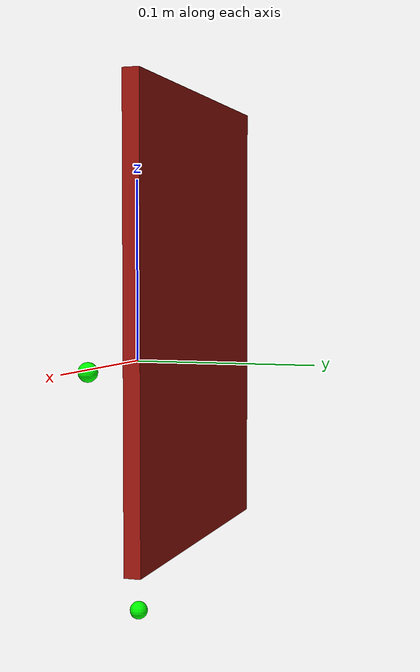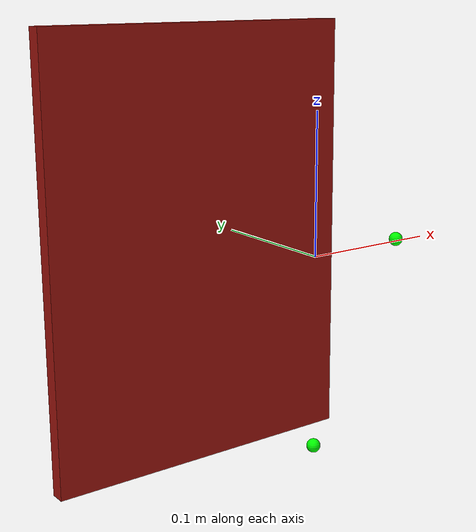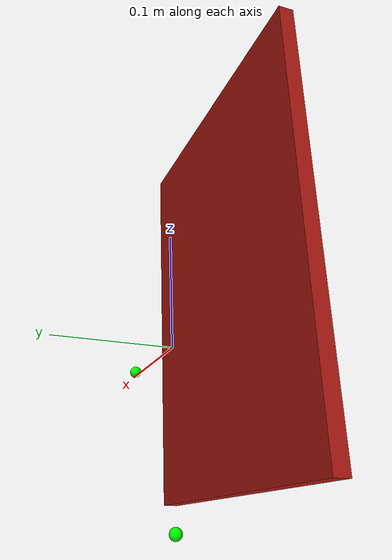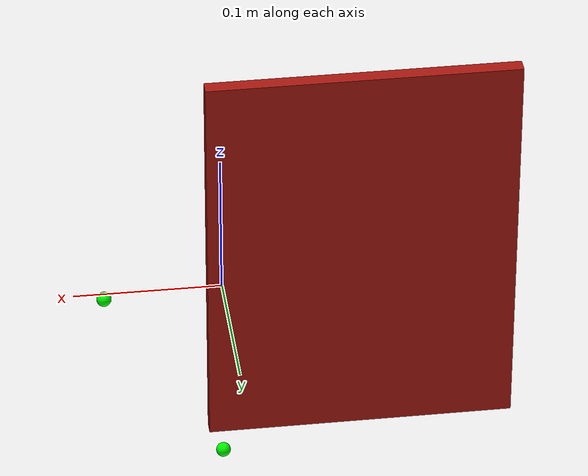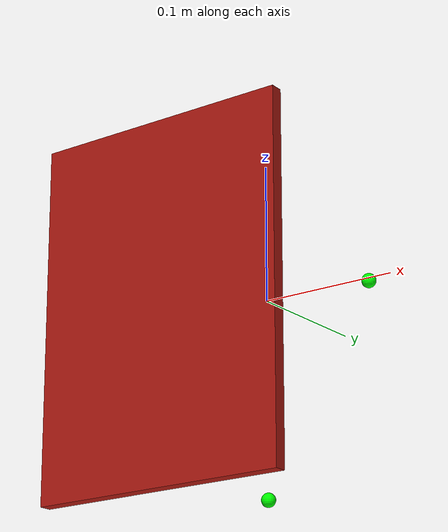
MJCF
<mujoco model="can-visual">
  <asset>
    <texture file="../textures/white-bricks.png" type="cube" name="brick" />
    <material name="BrickWall" texture="brick" specular="1" shininess="0.3" rgba="1 0.3 0.3 1" />
  </asset>
  <worldbody>
    <body>
      <body name="object" pos="0 0 0">
        <geom material="BrickWall" type="box" contype="1" size="0.105 0.005 0.14" name="wall" conaffinity="1" pos="-0.095 0 0.02" mass="1000" group="0"/>
      </body>

      <site rgba="0 1 0 1" size="0.005" pos="0 0 -0.14" name="bottom_site"/>
      <site rgba="0 1 0 1" size="0.005" pos="0 0 0.14" name="top_site"/>
      <site rgba="0 1 0 1" size="0.005" pos="0.08 0.005 0" name="horizontal_radius_site"/>
    </body>
  </worldbody>
</mujoco>
